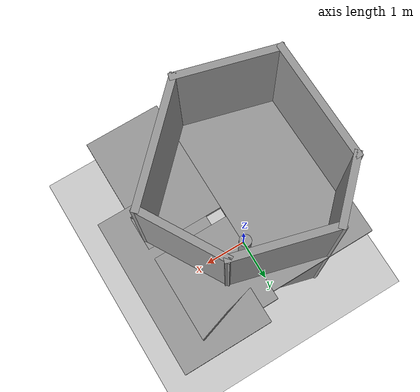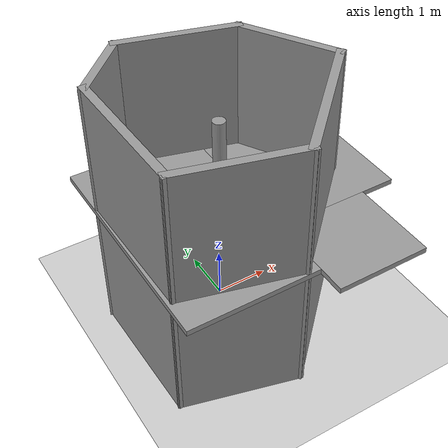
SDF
<sdf version='1.4'>
  <world name='default'>
    <!-- A global light source -->
    <include>
      <uri>model://sun</uri>
    </include>

    <!-- A ground plane -->
    <include>
      <uri>model://ground_plane</uri>
    </include>

    <physics type="ode">
      <real_time_update_rate>1000.0</real_time_update_rate>
      <max_step_size>0.001</max_step_size>
      <real_time_factor>1</real_time_factor>
      <ode>
        <solver>
          <type>quick</type>
          <iters>150</iters>
          <precon_iters>0</precon_iters>
          <sor>1.400000</sor>
          <use_dynamic_moi_rescaling>1</use_dynamic_moi_rescaling>
        </solver>
        <constraints>
          <cfm>0.00001</cfm>
          <erp>0.2</erp>
          <contact_max_correcting_vel>2000.000000</contact_max_correcting_vel>
          <contact_surface_layer>0.01000</contact_surface_layer>
        </constraints>
      </ode>
    </physics>

    <!-- Load world -->

    <include>
	<static>true</static>
	<pose>0 0 0 0 0 0</pose>
      <uri>model://holes1</uri>
    </include>

	<include>
	<pose>0.4 0.6 3 0 0 0</pose>
      <uri>model://small_cylinder</uri>
    </include>

    <scene>
      <ambient>0.4 0.4 0.4 1</ambient>
      <background>0.7 0.7 0.7 1</background>
      <shadows>true</shadows>
    </scene>

    <gui fullscreen='0'>
      <camera name='user_camera'>
        <pose>0.8 0.0 12.0 0 1.5708 0</pose>
        <view_controller>orbit</view_controller>
      </camera>
    </gui>
  </world>
</sdf>

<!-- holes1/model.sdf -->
<sdf version='1.6'>
  <model name='holes1'>
    <pose frame=''>0.755403 0.416373 0 0 -0 0</pose>
    <link name='Floor_0'>
      <pose frame=''>0 -0.47582 2.5 0 -0 0</pose>
      <visual name='Floor_0_Visual_0'>
        <pose frame=''>-0.857102 0 0.05 0 -0 0</pose>
        <geometry>
          <box>
            <size>2.40597 4.19628 0.1</size>
          </box>
        </geometry>
        <material>
          <script>
            <uri>file://media/materials/scripts/gazebo.material</uri>
            <name>Gazebo/Grey</name>
          </script>
          <ambient>1 1 1 1</ambient>
        </material>
        <meta>
          <layer>1</layer>
        </meta>
      </visual>
      <collision name='Floor_0_Collision_0'>
        <geometry>
          <box>
            <size>2.40597 4.19628 0.1</size>
          </box>
        </geometry>
        <pose frame=''>-0.857102 0 0.05 0 -0 0</pose>
      </collision>
      <visual name='Floor_0_Visual_1'>
        <pose frame=''>1.20298 -1.27418 0.05 0 -0 0</pose>
        <geometry>
          <box>
            <size>1.7142 2.64792 0.1</size>
          </box>
        </geometry>
        <material>
          <script>
            <uri>file://media/materials/scripts/gazebo.material</uri>
            <name>Gazebo/Grey</name>
          </script>
          <ambient>1 1 1 1</ambient>
        </material>
        <meta>
          <layer>1</layer>
        </meta>
      </visual>
      <collision name='Floor_0_Collision_1'>
        <geometry>
          <box>
            <size>1.7142 2.64792 0.1</size>
          </box>
        </geometry>
        <pose frame=''>1.20298 -1.27418 0.05 0 -0 0</pose>
      </collision>
	<visual name='Floor_0_Visual_3'>
        <pose frame=''>1.20298 1.27418 0.05 0 -0 0</pose>
        <geometry>
          <box>
            <size>1.7142 2 0.1</size>
          </box>
        </geometry>
        <material>
          <script>
            <uri>file://media/materials/scripts/gazebo.material</uri>
            <name>Gazebo/Grey</name>
          </script>
          <ambient>1 1 1 1</ambient>
        </material>
        <meta>
          <layer>1</layer>
        </meta>
      </visual>
      <collision name='Floor_0_Collision_3'>
        <geometry>
          <box>
            <size>1.7142 2 0.1</size>
          </box>
        </geometry>
        <pose frame=''>1.20298 1.27418 0.05 0 -0 0</pose>
      </collision>
      <visual name='Floor_0_Visual_2'>
        <pose frame=''>1.70298 0.823959 0.05 0 -0 0</pose>
        <geometry>
          <box>
            <size>2 3.54836 0.1</size>
          </box>
        </geometry>
        <material>
          <script>
            <uri>file://media/materials/scripts/gazebo.material</uri>
            <name>Gazebo/Grey</name>
          </script>
          <ambient>1 1 1 1</ambient>
        </material>
        <meta>
          <layer>1</layer>
        </meta>
      </visual>
      <collision name='Floor_0_Collision_2'>
        <geometry>
          <box>
            <size>1.714205 3.54836 0.1</size>
          </box>
        </geometry>
        <pose frame=''>2 0.823959 0.05 0 -0 0</pose>
      </collision>
    </link>

    <link name='Wall_0'>
      <collision name='Wall_0_Collision'>
        <geometry>
          <box>
            <size>2.25 0.15 2.5</size>
          </box>
        </geometry>
        <pose frame=''>0 0 1.25 0 -0 0</pose>
      </collision>
      <visual name='Wall_0_Visual'>
        <pose frame=''>0 0 1.25 0 -0 0</pose>
        <geometry>
          <box>
            <size>2.25 0.15 2.5</size>
          </box>
        </geometry>
        <material>
          <script>
            <uri>file://media/materials/scripts/gazebo.material</uri>
            <name>Gazebo/Grey</name>
          </script>
          <ambient>1 1 1 1</ambient>
        </material>
        <meta>
          <layer>0</layer>
        </meta>
      </visual>
      <pose frame=''>-0.89868 -2.19613 0 0 -0 -0.261799</pose>
    </link>
    <link name='Wall_1'>
      <collision name='Wall_1_Collision'>
        <geometry>
          <box>
            <size>2.75 0.15 2.5</size>
          </box>
        </geometry>
        <pose frame=''>0 0 1.25 0 -0 0</pose>
      </collision>
      <visual name='Wall_1_Visual'>
        <pose frame=''>0 0 1.25 0 -0 0</pose>
        <geometry>
          <box>
            <size>2.75 0.15 2.5</size>
          </box>
        </geometry>
        <material>
          <script>
            <uri>file://media/materials/scripts/gazebo.material</uri>
            <name>Gazebo/Grey</name>
          </script>
          <ambient>1 1 1 1</ambient>
        </material>
        <meta>
          <layer>0</layer>
        </meta>
      </visual>
      <pose frame=''>1.03478 -1.54865 0 0 -0 0.785398</pose>
    </link>
    <link name='Wall_10'>
      <collision name='Wall_10_Collision'>
        <geometry>
          <box>
            <size>2.25 0.15 2.5</size>
          </box>
        </geometry>
        <pose frame=''>0 0 1.25 0 -0 0</pose>
      </collision>
      <visual name='Wall_10_Visual'>
        <pose frame=''>0 0 1.25 0 -0 0</pose>
        <geometry>
          <box>
            <size>2.25 0.15 2.5</size>
          </box>
        </geometry>
        <material>
          <script>
            <uri>file://media/materials/scripts/gazebo.material</uri>
            <name>Gazebo/Grey</name>
          </script>
          <ambient>1 1 1 1</ambient>
        </material>
        <meta>
          <layer>1</layer>
        </meta>
      </visual>
      <pose frame=''>0.014797 1.24449 2.5 0 -0 2.87979</pose>
    </link>
    <link name='Wall_11'>
      <collision name='Wall_11_Collision'>
        <geometry>
          <box>
            <size>1.5 0.15 2.5</size>
          </box>
        </geometry>
        <pose frame=''>0 0 1.25 0 -0 0</pose>
      </collision>
      <visual name='Wall_11_Visual'>
        <pose frame=''>0 0 1.25 0 -0 0</pose>
        <geometry>
          <box>
            <size>1.5 0.15 2.5</size>
          </box>
        </geometry>
        <material>
          <script>
            <uri>file://media/materials/scripts/gazebo.material</uri>
            <name>Gazebo/Grey</name>
          </script>
          <ambient>1 1 1 1</ambient>
        </material>
        <meta>
          <layer>1</layer>
        </meta>
      </visual>
      <pose frame=''>-1.47672 1.03896 2.5 0 -0 -2.35619</pose>
    </link>
    <link name='Wall_12'>
      <collision name='Wall_12_Collision'>
        <geometry>
          <box>
            <size>2.63637 0.15 2.5</size>
          </box>
        </geometry>
        <pose frame=''>0 0 1.25 0 -0 0</pose>
      </collision>
      <visual name='Wall_12_Visual'>
        <pose frame=''>0 0 1.25 0 -0 0</pose>
        <geometry>
          <box>
            <size>2.63637 0.15 2.5</size>
          </box>
        </geometry>
        <material>
          <script>
            <uri>file://media/materials/scripts/gazebo.material</uri>
            <name>Gazebo/Grey</name>
          </script>
          <ambient>1 1 1 1</ambient>
        </material>
        <meta>
          <layer>1</layer>
        </meta>
      </visual>
      <pose frame=''>-1.93346 -0.681358 2.5 0 -0 -1.55426</pose>
    </link>
    <link name='Wall_2'>
      <collision name='Wall_2_Collision'>
        <geometry>
          <box>
            <size>2 0.15 2.5</size>
          </box>
        </geometry>
        <pose frame=''>0 0 1.25 0 -0 0</pose>
      </collision>
      <visual name='Wall_2_Visual'>
        <pose frame=''>0 0 1.25 0 -0 0</pose>
        <geometry>
          <box>
            <size>2 0.15 2.5</size>
          </box>
        </geometry>
        <material>
          <script>
            <uri>file://media/materials/scripts/gazebo.material</uri>
            <name>Gazebo/Grey</name>
          </script>
          <ambient>1 1 1 1</ambient>
        </material>
        <meta>
          <layer>0</layer>
        </meta>
      </visual>
      <pose frame=''>1.49152 0.171658 0 0 -0 2.0944</pose>
    </link>
    <link name='Wall_3'>
      <collision name='Wall_3_Collision'>
        <geometry>
          <box>
            <size>2.25 0.15 2.5</size>
          </box>
        </geometry>
        <pose frame=''>0 0 1.25 0 -0 0</pose>
      </collision>
      <visual name='Wall_3_Visual'>
        <pose frame=''>0 0 1.25 0 -0 0</pose>
        <geometry>
          <box>
            <size>2.25 0.15 2.5</size>
          </box>
        </geometry>
        <material>
          <script>
            <uri>file://media/materials/scripts/gazebo.material</uri>
            <name>Gazebo/Grey</name>
          </script>
          <ambient>1 1 1 1</ambient>
        </material>
        <meta>
          <layer>0</layer>
        </meta>
      </visual>
      <pose frame=''>0.014797 1.24449 0 0 -0 2.87979</pose>
    </link>
    <link name='Wall_4'>
      <collision name='Wall_4_Collision'>
        <geometry>
          <box>
            <size>1.5 0.15 2.5</size>
          </box>
        </geometry>
        <pose frame=''>0 0 1.25 0 -0 0</pose>
      </collision>
      <visual name='Wall_4_Visual'>
        <pose frame=''>0 0 1.25 0 -0 0</pose>
        <geometry>
          <box>
            <size>1.5 0.15 2.5</size>
          </box>
        </geometry>
        <material>
          <script>
            <uri>file://media/materials/scripts/gazebo.material</uri>
            <name>Gazebo/Grey</name>
          </script>
          <ambient>1 1 1 1</ambient>
        </material>
        <meta>
          <layer>0</layer>
        </meta>
      </visual>
      <pose frame=''>-1.47672 1.03896 0 0 -0 -2.35619</pose>
    </link>
    <link name='Wall_5'>
      <collision name='Wall_5_Collision'>
        <geometry>
          <box>
            <size>2.63637 0.15 2.5</size>
          </box>
        </geometry>
        <pose frame=''>0 0 1.25 0 -0 0</pose>
      </collision>
      <visual name='Wall_5_Visual'>
        <pose frame=''>0 0 1.25 0 -0 0</pose>
        <geometry>
          <box>
            <size>2.63637 0.15 2.5</size>
          </box>
        </geometry>
        <material>
          <script>
            <uri>file://media/materials/scripts/gazebo.material</uri>
            <name>Gazebo/Grey</name>
          </script>
          <ambient>1 1 1 1</ambient>
        </material>
        <meta>
          <layer>0</layer>
        </meta>
      </visual>
      <pose frame=''>-1.93346 -0.681358 0 0 -0 -1.55426</pose>
    </link>
    <link name='Wall_7'>
      <collision name='Wall_7_Collision'>
        <geometry>
          <box>
            <size>2.25 0.15 2.5</size>
          </box>
        </geometry>
        <pose frame=''>0 0 1.25 0 -0 0</pose>
      </collision>
      <visual name='Wall_7_Visual'>
        <pose frame=''>0 0 1.25 0 -0 0</pose>
        <geometry>
          <box>
            <size>2.25 0.15 2.5</size>
          </box>
        </geometry>
        <material>
          <script>
            <uri>file://media/materials/scripts/gazebo.material</uri>
            <name>Gazebo/Grey</name>
          </script>
          <ambient>1 1 1 1</ambient>
        </material>
        <meta>
          <layer>1</layer>
        </meta>
      </visual>
      <pose frame=''>-0.89868 -2.19613 2.5 0 -0 -0.261799</pose>
    </link>
    <link name='Wall_8'>
      <collision name='Wall_8_Collision'>
        <geometry>
          <box>
            <size>2.75 0.15 2.5</size>
          </box>
        </geometry>
        <pose frame=''>0 0 1.25 0 -0 0</pose>
      </collision>
      <visual name='Wall_8_Visual'>
        <pose frame=''>0 0 1.25 0 -0 0</pose>
        <geometry>
          <box>
            <size>2.75 0.15 2.5</size>
          </box>
        </geometry>
        <material>
          <script>
            <uri>file://media/materials/scripts/gazebo.material</uri>
            <name>Gazebo/Grey</name>
          </script>
          <ambient>1 1 1 1</ambient>
        </material>
        <meta>
          <layer>1</layer>
        </meta>
      </visual>
      <pose frame=''>1.03478 -1.54865 2.5 0 -0 0.785398</pose>
    </link>
    <link name='Wall_9'>
      <collision name='Wall_9_Collision'>
        <geometry>
          <box>
            <size>2 0.15 2.5</size>
          </box>
        </geometry>
        <pose frame=''>0 0 1.25 0 -0 0</pose>
      </collision>
      <visual name='Wall_9_Visual'>
        <pose frame=''>0 0 1.25 0 -0 0</pose>
        <geometry>
          <box>
            <size>2 0.15 2.5</size>
          </box>
        </geometry>
        <material>
          <script>
            <uri>file://media/materials/scripts/gazebo.material</uri>
            <name>Gazebo/Grey</name>
          </script>
          <ambient>1 1 1 1</ambient>
        </material>
        <meta>
          <layer>1</layer>
        </meta>
      </visual>
      <pose frame=''>1.49152 0.171658 2.5 0 -0 2.0944</pose>
    </link>
    <static>1</static>
  </model>
</sdf>

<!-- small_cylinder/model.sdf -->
<sdf version='1.6'>
  <model name='small_cylinder'>
    <link name='link_0'>
      <inertial>
        <mass>0.0645321</mass>
        <inertia>
          <ixx>0.00563792</ixx>
          <ixy>0</ixy>
          <ixz>0</ixz>
          <iyy>0.00563792</iyy>
          <iyz>0</iyz>
          <izz>0.000520485</izz>
        </inertia>
        <pose frame=''>0 0 0 0 -0 0</pose>
      </inertial>
      <pose frame=''>-0 -0 0 0 -0 0</pose>
      <visual name='visual'>
        <pose frame=''>0 0 0 0 -0 0</pose>
        <geometry>
          <cylinder>
            <radius>0.127008</radius>
            <length>1</length>
          </cylinder>
        </geometry>
        <material>
          <lighting>1</lighting>
          <script>
            <uri>file://media/materials/scripts/gazebo.material</uri>
            <name>Gazebo/Grey</name>
          </script>
        </material>
        <transparency>0</transparency>
        <cast_shadows>1</cast_shadows>
      </visual>
      <collision name='collision'>
        <laser_retro>0</laser_retro>
        <max_contacts>10</max_contacts>
        <pose frame=''>0 0 0 0 -0 0</pose>
        <geometry>
          <cylinder>
            <radius>0.127008</radius>
            <length>1</length>
          </cylinder>
        </geometry>
        <surface>
          <friction>
            <ode>
              <mu>1</mu>
              <mu2>1</mu2>
              <fdir1>0 0 0</fdir1>
              <slip1>0</slip1>
              <slip2>0</slip2>
            </ode>
            <torsional>
              <coefficient>1</coefficient>
              <patch_radius>0</patch_radius>
              <surface_radius>0</surface_radius>
              <use_patch_radius>1</use_patch_radius>
              <ode>
                <slip>0</slip>
              </ode>
            </torsional>
          </friction>
          <bounce>
            <restitution_coefficient>0</restitution_coefficient>
            <threshold>1e+06</threshold>
          </bounce>
          <contact>
            <collide_without_contact>0</collide_without_contact>
            <collide_without_contact_bitmask>1</collide_without_contact_bitmask>
            <collide_bitmask>1</collide_bitmask>
            <ode>
              <soft_cfm>0</soft_cfm>
              <soft_erp>0.2</soft_erp>
              <kp>1e+13</kp>
              <kd>1</kd>
              <max_vel>0.01</max_vel>
              <min_depth>0</min_depth>
            </ode>
            <bullet>
              <split_impulse>1</split_impulse>
              <split_impulse_penetration_threshold>-0.01</split_impulse_penetration_threshold>
              <soft_cfm>0</soft_cfm>
              <soft_erp>0.2</soft_erp>
              <kp>1e+13</kp>
              <kd>1</kd>
            </bullet>
          </contact>
        </surface>
      </collision>
    </link>
    <static>0</static>
    <allow_auto_disable>1</allow_auto_disable>
  </model>
</sdf>
